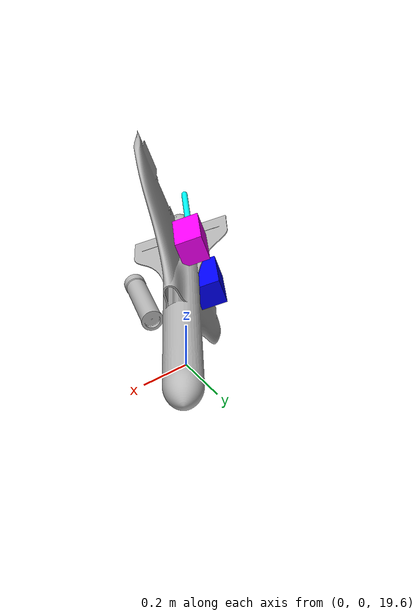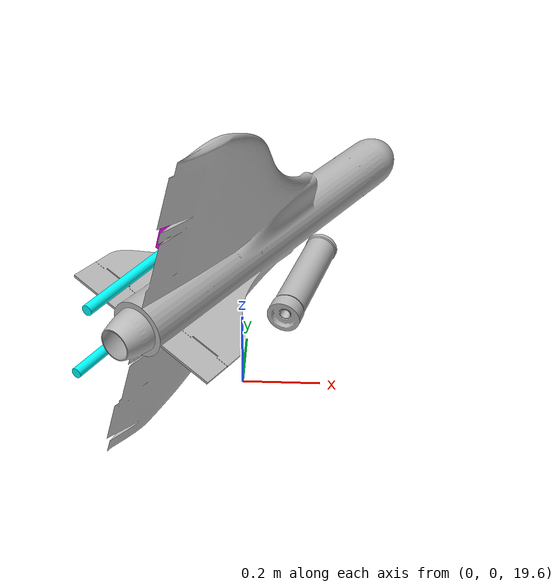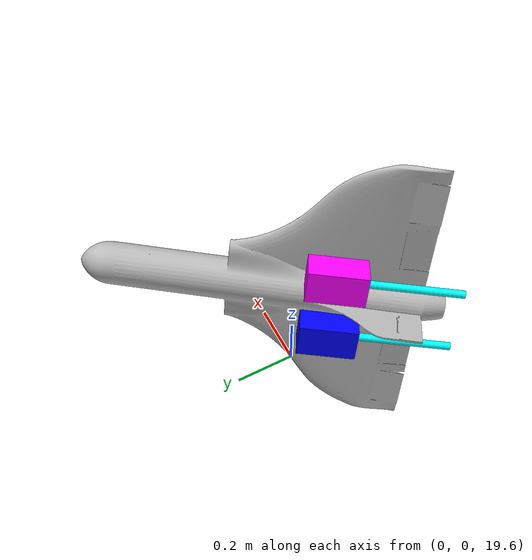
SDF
<sdf version="1.9">
 <world name="sr75_f22_detachable_launch_test">
  <plugin filename="gz-sim-physics-system" name="gz::sim::systems::Physics"/>
  <plugin filename="gz-sim-scene-broadcaster-system" name="gz::sim::systems::SceneBroadcaster"/>
  <plugin filename="gz-sim-apply-link-wrench-system" name="gz::sim::systems::ApplyLinkWrench"/>
  <light name="sun" type="directional"><pose>0 0 10 0 0 0</pose><direction>-0.5 0.5 -1</direction></light>
  <model name="ground_plane">
   <static>true</static>
   <link name="link">
    <collision name="collision">
     <geometry><plane><normal>0 0 1</normal><size>200 200</size></plane></geometry>
    </collision>
   </link>
  </model>
  <include><uri>model://sr75_uav_release</uri><pose>0 0 20 1.5708 1.22173 2.35619</pose></include>
 </world>
</sdf>

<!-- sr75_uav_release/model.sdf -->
<sdf version="1.9">
  <model name="sr75_uav_release">

    <static>false</static>

    <!-- Main UAV mesh -->
    <link name="wing">
      <pose>0 0 0 0 0 0</pose>

      <inertial>
        <pose>-0.15 0 -0.05 0 0 0</pose>
        <mass>82.5</mass>
        <inertia>
          <ixx>19.0</ixx>
          <ixy>0</ixy>
          <ixz>0</ixz>
          <iyy>20.5</iyy>
          <iyz>0</iyz>
          <izz>33.7</izz>
        </inertia>
      </inertial>

      <visual name="sr75_uav_visual">
        <pose>0 0 0 0 0 0</pose>
        <geometry>
          <mesh>
            <uri>model://sr75_launch_stack_with_controls/meshes/SR75_UAV.obj</uri>
            <scale>1 1 1</scale>
          </mesh>
        </geometry>
      </visual>
    </link>

    <!-- RATO mesh -->
    <link name="rato_link">
      <pose>0 0 0 0 0 0</pose>

      <inertial>
        <mass>10.0</mass>
        <inertia>
          <ixx>0.04</ixx>
          <ixy>0</ixy>
          <ixz>0</ixz>
          <iyy>0.08</iyy>
          <iyz>0</iyz>
          <izz>0.08</izz>
        </inertia>
      </inertial>

      <collision name="rato_collision">
        <pose>0 0 0 0 1.5708 0</pose>
        <geometry>
          <cylinder>
            <radius>0.045</radius>
            <length>0.30</length>
          </cylinder>
        </geometry>
      </collision>

      <visual name="rato_visual">
        <pose>0 0 0 0 0 0</pose>
        <geometry>
          <mesh>
            <uri>model://sr75_launch_stack_with_controls/meshes/SR75_RATO.obj</uri>
            <scale>1 1 1</scale>
          </mesh>
        </geometry>
      </visual>
    </link>

    <joint name="rato_to_wing_joint" type="fixed">
      <parent>wing</parent>
      <child>rato_link</child>
    </joint>

    <!-- BLUE: left engine block -->
    <link name="left_engine_link">
      <pose>0.100 0.030 -0.130 3.141578 1.320793 -1.570811</pose>
      <inertial>
        <mass>0.001</mass>
        <inertia>
          <ixx>0.000001</ixx>
          <ixy>0</ixy>
          <ixz>0</ixz>
          <iyy>0.000001</iyy>
          <iyz>0</iyz>
          <izz>0.000001</izz>
        </inertia>
      </inertial>

      <visual name="debug_left_engine_block">
        <pose>0 0 0 0 0 0</pose>
        <geometry>
          <box>
            <size>0.18 0.10 0.10</size>
          </box>
        </geometry>
        <material>
          <ambient>0 0 1 1</ambient>
          <diffuse>0 0 1 1</diffuse>
        </material>
      </visual>

      <visual name="debug_left_engine_thrust_direction">
        <pose>0.220 0 0 3.141593 1.570793 3.141593</pose>
        <geometry>
          <cylinder>
            <radius>0.012</radius>
            <length>0.32</length>
          </cylinder>
        </geometry>
        <material>
          <ambient>0 1 1 1</ambient>
          <diffuse>0 1 1 1</diffuse>
        </material>
      </visual>
    </link>

    <joint name="left_engine_joint" type="fixed">
      <parent>wing</parent>
      <child>left_engine_link</child>
    </joint>

    <!-- MAGENTA: right engine block -->
    <link name="right_engine_link">
      <pose>-0.100 0.030 -0.130 3.141578 1.320793 -1.570811</pose>
      <inertial>
        <mass>0.001</mass>
        <inertia>
          <ixx>0.000001</ixx>
          <ixy>0</ixy>
          <ixz>0</ixz>
          <iyy>0.000001</iyy>
          <iyz>0</iyz>
          <izz>0.000001</izz>
        </inertia>
      </inertial>

      <visual name="debug_right_engine_block">
        <pose>0 0 0 0 0 0</pose>
        <geometry>
          <box>
            <size>0.18 0.10 0.10</size>
          </box>
        </geometry>
        <material>
          <ambient>1 0 1 1</ambient>
          <diffuse>1 0 1 1</diffuse>
        </material>
      </visual>

      <visual name="debug_right_engine_thrust_direction">
        <pose>0.220 0 0 3.141593 1.570793 3.141593</pose>
        <geometry>
          <cylinder>
            <radius>0.012</radius>
            <length>0.32</length>
          </cylinder>
        </geometry>
        <material>
          <ambient>0 1 1 1</ambient>
          <diffuse>0 1 1 1</diffuse>
        </material>
      </visual>
    </link>

    <joint name="right_engine_joint" type="fixed">
      <parent>wing</parent>
      <child>right_engine_link</child>
    </joint>

    <link name="imu_link">
      <pose>0 0 0 0 0 0</pose>

      <inertial>
        <pose>0 0 0 0 0 0</pose>
        <mass>0.15</mass>
        <inertia>
          <ixx>0.00002</ixx>
          <ixy>0</ixy>
          <ixz>0</ixz>
          <iyy>0.00002</iyy>
          <iyz>0</iyz>
          <izz>0.00002</izz>
        </inertia>
      </inertial>

      <sensor name="imu_sensor" type="imu">
        <pose>0 0 0 0 0 0</pose>
        <always_on>1</always_on>
        <update_rate>1000</update_rate>
      </sensor>
    </link>

    <joint name="imu_joint" type="fixed">
      <parent>wing</parent>
      <child>imu_link</child>
    </joint>

  </model>
</sdf>
